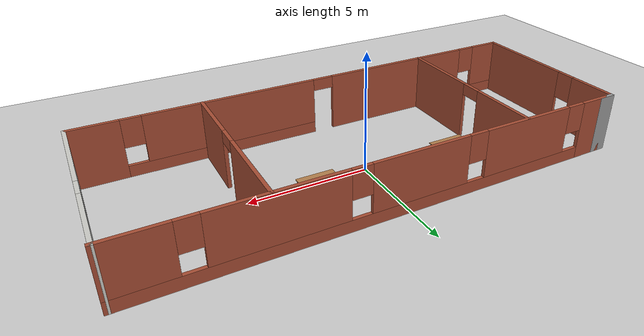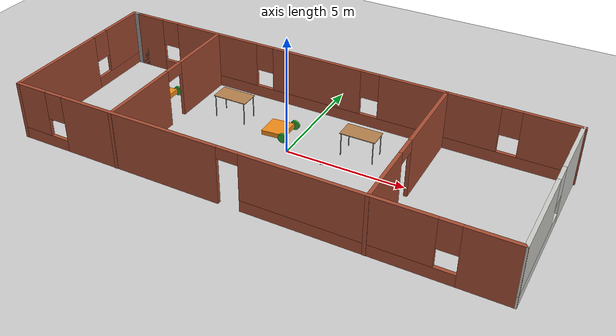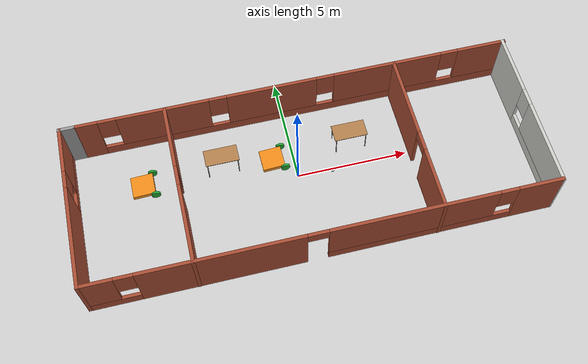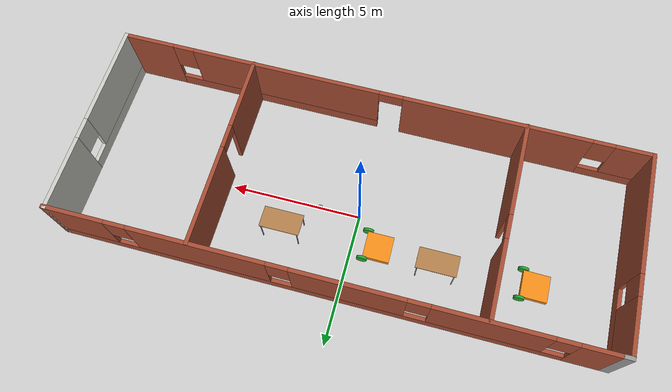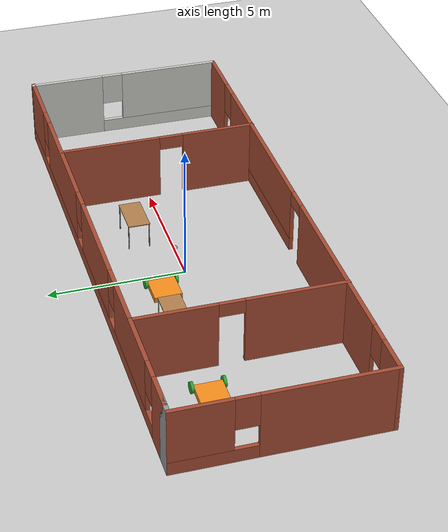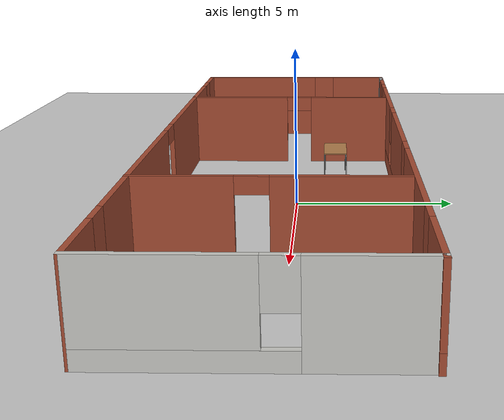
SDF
<sdf version="1.6">
 <world name="default">
  <plugin name="welcome" filename="libwelcome.so"/>
  <light name="sun" type="directional">
   <pose>0 0 10 0 -0 0</pose>
   <diffuse>0.8 0.8 0.8 1</diffuse>
   <specular>0.2 0.2 0.2 1</specular>
   <attenuation>
    <range>1000</range>
    <constant>0.9</constant>
    <linear>0.01</linear>
    <quadratic>0.001</quadratic>
   </attenuation>
   <direction>-0.5 0.1 -0.9</direction>
   <spot><inner_angle>0</inner_angle><outer_angle>0</outer_angle><falloff>0</falloff></spot>
  </light>
  <model name="ground_plane">
   <static>1</static>
   <link name="link">
    <collision name="collision">
     <geometry><plane><normal>0 0 1</normal><size>100 100</size></plane></geometry>
     <surface>
      <contact><collide_bitmask>65535</collide_bitmask></contact>
      <friction><ode><mu>100</mu><mu2>50</mu2></ode></friction>
     </surface>
    </collision>
    <visual name="visual">
     <cast_shadows>0</cast_shadows>
     <geometry><plane><normal>0 0 1</normal><size>100 100</size></plane></geometry>
     <material>
      <script><uri>file://media/materials/scripts/gazebo.material</uri><name>Gazebo/Grey</name></script>
     </material>
    </visual>
   </link>
  </model>
  <gravity>0 0 -9.8</gravity>
  <magnetic_field>6e-06 2.3e-05 -4.2e-05</magnetic_field>
  <atmosphere type="adiabatic"/>
  <physics name="default_physics" default="0" type="ode">
   <max_step_size>0.001</max_step_size>
   <real_time_factor>1</real_time_factor>
   <real_time_update_rate>1000</real_time_update_rate>
  </physics>
  <scene><ambient>0.4 0.4 0.4 1</ambient><background>0.7 0.7 0.7 1</background><shadows>1</shadows></scene>
  <spherical_coordinates>
   <surface_model>EARTH_WGS84</surface_model>
   <latitude_deg>0</latitude_deg>
   <longitude_deg>0</longitude_deg>
   <elevation>0</elevation>
   <heading_deg>0</heading_deg>
  </spherical_coordinates>
  <model name="Building">
   <pose>0.341244 0.00547 0 0 -0 0</pose>
   <link name="Wall_0">
    <pose>0.178503 3.27515 0 0 -0 0</pose>
    <visual name="Wall_0_Visual_0">
     <pose>-9.32436 0 1.25 0 -0 0</pose>
     <geometry><box><size>1.35128 0.15 2.5</size></box></geometry>
     <material>
      <script><uri>file://media/materials/scripts/gazebo.material</uri><name>Gazebo/Bricks</name></script>
      <ambient>0.996078 0.47451 0.0196078 1</ambient>
     </material>
     <meta><layer>0</layer></meta>
    </visual>
    <collision name="Wall_0_Collision_0">
     <geometry><box><size>1.35128 0.15 2.5</size></box></geometry>
     <pose>-9.32436 0 1.25 0 -0 0</pose>
    </collision>
    <visual name="Wall_0_Visual_1">
     <pose>0.675638 0 0.25 0 -0 0</pose>
     <geometry><box><size>18.6487 0.15 0.5</size></box></geometry>
     <material>
      <script><uri>file://media/materials/scripts/gazebo.material</uri><name>Gazebo/Bricks</name></script>
      <ambient>0.996078 0.47451 0.0196078 1</ambient>
     </material>
     <meta><layer>0</layer></meta>
    </visual>
    <collision name="Wall_0_Collision_1">
     <geometry><box><size>18.6487 0.15 0.5</size></box></geometry>
     <pose>0.675638 0 0.25 0 -0 0</pose>
    </collision>
    <visual name="Wall_0_Visual_2">
     <pose>-5.80867 0 1.5 0 -0 0</pose>
     <geometry><box><size>4.08011 0.15 2</size></box></geometry>
     <material>
      <script><uri>file://media/materials/scripts/gazebo.material</uri><name>Gazebo/Bricks</name></script>
      <ambient>0.996078 0.47451 0.0196078 1</ambient>
     </material>
     <meta><layer>0</layer></meta>
    </visual>
    <collision name="Wall_0_Collision_2">
     <geometry><box><size>4.08011 0.15 2</size></box></geometry>
     <pose>-5.80867 0 1.5 0 -0 0</pose>
    </collision>
    <visual name="Wall_0_Visual_3">
     <pose>-0.934705 0 1.5 0 -0 0</pose>
     <geometry><box><size>4.06781 0.15 2</size></box></geometry>
     <material>
      <script><uri>file://media/materials/scripts/gazebo.material</uri><name>Gazebo/Bricks</name></script>
      <ambient>0.996078 0.47451 0.0196078 1</ambient>
     </material>
     <meta><layer>0</layer></meta>
    </visual>
    <collision name="Wall_0_Collision_3">
     <geometry><box><size>4.06781 0.15 2</size></box></geometry>
     <pose>-0.934705 0 1.5 0 -0 0</pose>
    </collision>
    <visual name="Wall_0_Visual_4">
     <pose>4.3976 0 1.5 0 -0 0</pose>
     <geometry><box><size>4.9968 0.15 2</size></box></geometry>
     <material>
      <script><uri>file://media/materials/scripts/gazebo.material</uri><name>Gazebo/Bricks</name></script>
      <ambient>0.996078 0.47451 0.0196078 1</ambient>
     </material>
     <meta><layer>0</layer></meta>
    </visual>
    <collision name="Wall_0_Collision_4">
     <geometry><box><size>4.9968 0.15 2</size></box></geometry>
     <pose>4.3976 0 1.5 0 -0 0</pose>
    </collision>
    <visual name="Wall_0_Visual_5">
     <pose>8.848 0 1.5 0 -0 0</pose>
     <geometry><box><size>2.304 0.15 2</size></box></geometry>
     <material>
      <script><uri>file://media/materials/scripts/gazebo.material</uri><name>Gazebo/Bricks</name></script>
      <ambient>0.996078 0.47451 0.0196078 1</ambient>
     </material>
     <meta><layer>0</layer></meta>
    </visual>
    <collision name="Wall_0_Collision_5">
     <geometry><box><size>2.304 0.15 2</size></box></geometry>
     <pose>8.848 0 1.5 0 -0 0</pose>
    </collision>
    <visual name="Wall_0_Visual_6">
     <pose>-8.24872 0 1.9 0 -0 0</pose>
     <geometry><box><size>0.8 0.15 1.2</size></box></geometry>
     <material>
      <script><uri>file://media/materials/scripts/gazebo.material</uri><name>Gazebo/Bricks</name></script>
      <ambient>0.996078 0.47451 0.0196078 1</ambient>
     </material>
     <meta><layer>0</layer></meta>
    </visual>
    <collision name="Wall_0_Collision_6">
     <geometry><box><size>0.8 0.15 1.2</size></box></geometry>
     <pose>-8.24872 0 1.9 0 -0 0</pose>
    </collision>
    <visual name="Wall_0_Visual_7">
     <pose>-3.36861 0 1.9 0 -0 0</pose>
     <geometry><box><size>0.8 0.15 1.2</size></box></geometry>
     <material>
      <script><uri>file://media/materials/scripts/gazebo.material</uri><name>Gazebo/Bricks</name></script>
      <ambient>0.996078 0.47451 0.0196078 1</ambient>
     </material>
     <meta><layer>0</layer></meta>
    </visual>
    <collision name="Wall_0_Collision_7">
     <geometry><box><size>0.8 0.15 1.2</size></box></geometry>
     <pose>-3.36861 0 1.9 0 -0 0</pose>
    </collision>
    <visual name="Wall_0_Visual_8">
     <pose>1.4992 0 1.9 0 -0 0</pose>
     <geometry><box><size>0.8 0.15 1.2</size></box></geometry>
     <material>
      <script><uri>file://media/materials/scripts/gazebo.material</uri><name>Gazebo/Bricks</name></script>
      <ambient>0.996078 0.47451 0.0196078 1</ambient>
     </material>
     <meta><layer>0</layer></meta>
    </visual>
    <collision name="Wall_0_Collision_8">
     <geometry><box><size>0.8 0.15 1.2</size></box></geometry>
     <pose>1.4992 0 1.9 0 -0 0</pose>
    </collision>
    <visual name="Wall_0_Visual_9">
     <pose>7.296 0 1.9 0 -0 0</pose>
     <geometry><box><size>0.8 0.15 1.2</size></box></geometry>
     <material>
      <script><uri>file://media/materials/scripts/gazebo.material</uri><name>Gazebo/Bricks</name></script>
      <ambient>0.996078 0.47451 0.0196078 1</ambient>
     </material>
     <meta><layer>0</layer></meta>
    </visual>
    <collision name="Wall_0_Collision_9">
     <geometry><box><size>0.8 0.15 1.2</size></box></geometry>
     <pose>7.296 0 1.9 0 -0 0</pose>
    </collision>
   </link>
   <link name="Wall_1">
    <pose>10.0233 -0.399847 0 0 -0 -1.57807</pose>
    <visual name="Wall_1_Visual_0">
     <pose>-2.33623 0 1.25 0 -0 0</pose>
     <geometry><box><size>2.82774 0.15 2.5</size></box></geometry>
     <material>
      <script><uri>file://media/materials/scripts/gazebo.material</uri><name>Gazebo/CeilingTiled</name></script>
      <ambient>0.996078 0.47451 0.0196078 1</ambient>
     </material>
     <meta><layer>0</layer></meta>
    </visual>
    <collision name="Wall_1_Collision_0">
     <geometry><box><size>2.82774 0.15 2.5</size></box></geometry>
     <pose>-2.33623 0 1.25 0 -0 0</pose>
    </collision>
    <visual name="Wall_1_Visual_1">
     <pose>1.41387 0 0.25 0 -0 0</pose>
     <geometry><box><size>4.67246 0.15 0.5</size></box></geometry>
     <material>
      <script><uri>file://media/materials/scripts/gazebo.material</uri><name>Gazebo/CeilingTiled</name></script>
      <ambient>0.996078 0.47451 0.0196078 1</ambient>
     </material>
     <meta><layer>0</layer></meta>
    </visual>
    <collision name="Wall_1_Collision_1">
     <geometry><box><size>4.67246 0.15 0.5</size></box></geometry>
     <pose>1.41387 0 0.25 0 -0 0</pose>
    </collision>
    <visual name="Wall_1_Visual_2">
     <pose>1.81387 0 1.5 0 -0 0</pose>
     <geometry><box><size>3.87245 0.15 2</size></box></geometry>
     <material>
      <script><uri>file://media/materials/scripts/gazebo.material</uri><name>Gazebo/CeilingTiled</name></script>
      <ambient>0.996078 0.47451 0.0196078 1</ambient>
     </material>
     <meta><layer>0</layer></meta>
    </visual>
    <collision name="Wall_1_Collision_2">
     <geometry><box><size>3.87245 0.15 2</size></box></geometry>
     <pose>1.81387 0 1.5 0 -0 0</pose>
    </collision>
    <visual name="Wall_1_Visual_3">
     <pose>-0.522358 0 1.9 0 -0 0</pose>
     <geometry><box><size>0.8 0.15 1.2</size></box></geometry>
     <material>
      <script><uri>file://media/materials/scripts/gazebo.material</uri><name>Gazebo/CeilingTiled</name></script>
      <ambient>0.996078 0.47451 0.0196078 1</ambient>
     </material>
     <meta><layer>0</layer></meta>
    </visual>
    <collision name="Wall_1_Collision_3">
     <geometry><box><size>0.8 0.15 1.2</size></box></geometry>
     <pose>-0.522358 0 1.9 0 -0 0</pose>
    </collision>
   </link>
   <link name="Wall_2">
    <pose>-0.053502 -4.07485 0 0 -0 3.14159</pose>
    <visual name="Wall_2_Visual_0">
     <pose>-9.11902 0 1.25 0 -0 0</pose>
     <geometry><box><size>2.01195 0.15 2.5</size></box></geometry>
     <material>
      <script><uri>file://media/materials/scripts/gazebo.material</uri><name>Gazebo/Bricks</name></script>
      <ambient>0.996078 0.47451 0.0196078 1</ambient>
     </material>
     <meta><layer>0</layer></meta>
    </visual>
    <collision name="Wall_2_Collision_0">
     <geometry><box><size>2.01195 0.15 2.5</size></box></geometry>
     <pose>-9.11902 0 1.25 0 -0 0</pose>
    </collision>
    <visual name="Wall_2_Visual_1">
     <pose>4.36674 0 1.25 0 -0 0</pose>
     <geometry><box><size>7.00132 0.15 2.5</size></box></geometry>
     <material>
      <script><uri>file://media/materials/scripts/gazebo.material</uri><name>Gazebo/Bricks</name></script>
      <ambient>0.996078 0.47451 0.0196078 1</ambient>
     </material>
     <meta><layer>0</layer></meta>
    </visual>
    <collision name="Wall_2_Collision_1">
     <geometry><box><size>7.00132 0.15 2.5</size></box></geometry>
     <pose>4.36674 0 1.25 0 -0 0</pose>
    </collision>
    <visual name="Wall_2_Visual_2">
     <pose>-4.07348 0 0.25 0 -0 0</pose>
     <geometry><box><size>8.07913 0.15 0.5</size></box></geometry>
     <material>
      <script><uri>file://media/materials/scripts/gazebo.material</uri><name>Gazebo/Bricks</name></script>
      <ambient>0.996078 0.47451 0.0196078 1</ambient>
     </material>
     <meta><layer>0</layer></meta>
    </visual>
    <collision name="Wall_2_Collision_2">
     <geometry><box><size>8.07913 0.15 0.5</size></box></geometry>
     <pose>-4.07348 0 0.25 0 -0 0</pose>
    </collision>
    <visual name="Wall_2_Visual_3">
     <pose>8.9962 0 0.25 0 -0 0</pose>
     <geometry><box><size>2.2576 0.15 0.5</size></box></geometry>
     <material>
      <script><uri>file://media/materials/scripts/gazebo.material</uri><name>Gazebo/Bricks</name></script>
      <ambient>0.996078 0.47451 0.0196078 1</ambient>
     </material>
     <meta><layer>0</layer></meta>
    </visual>
    <collision name="Wall_2_Collision_3">
     <geometry><box><size>2.2576 0.15 0.5</size></box></geometry>
     <pose>8.9962 0 0.25 0 -0 0</pose>
    </collision>
    <visual name="Wall_2_Visual_4">
     <pose>-3.67348 0 1.5 0 -0 0</pose>
     <geometry><box><size>7.27913 0.15 2</size></box></geometry>
     <material>
      <script><uri>file://media/materials/scripts/gazebo.material</uri><name>Gazebo/Bricks</name></script>
      <ambient>0.996078 0.47451 0.0196078 1</ambient>
     </material>
     <meta><layer>0</layer></meta>
    </visual>
    <collision name="Wall_2_Collision_4">
     <geometry><box><size>7.27913 0.15 2</size></box></geometry>
     <pose>-3.67348 0 1.5 0 -0 0</pose>
    </collision>
    <visual name="Wall_2_Visual_5">
     <pose>-3.67348 0 1.5 0 -0 0</pose>
     <geometry><box><size>7.27913 0.15 2</size></box></geometry>
     <material>
      <script><uri>file://media/materials/scripts/gazebo.material</uri><name>Gazebo/Bricks</name></script>
      <ambient>0.996078 0.47451 0.0196078 1</ambient>
     </material>
     <meta><layer>0</layer></meta>
    </visual>
    <collision name="Wall_2_Collision_5">
     <geometry><box><size>7.27913 0.15 2</size></box></geometry>
     <pose>-3.67348 0 1.5 0 -0 0</pose>
    </collision>
    <visual name="Wall_2_Visual_6">
     <pose>9.3962 0 1.5 0 -0 0</pose>
     <geometry><box><size>1.4576 0.15 2</size></box></geometry>
     <material>
      <script><uri>file://media/materials/scripts/gazebo.material</uri><name>Gazebo/Bricks</name></script>
      <ambient>0.996078 0.47451 0.0196078 1</ambient>
     </material>
     <meta><layer>0</layer></meta>
    </visual>
    <collision name="Wall_2_Collision_6">
     <geometry><box><size>1.4576 0.15 2</size></box></geometry>
     <pose>9.3962 0 1.5 0 -0 0</pose>
    </collision>
    <visual name="Wall_2_Visual_7">
     <pose>-7.71305 0 1.9 0 -0 0</pose>
     <geometry><box><size>0.8 0.15 1.2</size></box></geometry>
     <material>
      <script><uri>file://media/materials/scripts/gazebo.material</uri><name>Gazebo/Bricks</name></script>
      <ambient>0.996078 0.47451 0.0196078 1</ambient>
     </material>
     <meta><layer>0</layer></meta>
    </visual>
    <collision name="Wall_2_Collision_7">
     <geometry><box><size>0.8 0.15 1.2</size></box></geometry>
     <pose>-7.71305 0 1.9 0 -0 0</pose>
    </collision>
    <visual name="Wall_2_Visual_8">
     <pose>8.2674 0 1.9 0 -0 0</pose>
     <geometry><box><size>0.8 0.15 1.2</size></box></geometry>
     <material>
      <script><uri>file://media/materials/scripts/gazebo.material</uri><name>Gazebo/Bricks</name></script>
      <ambient>0.996078 0.47451 0.0196078 1</ambient>
     </material>
     <meta><layer>0</layer></meta>
    </visual>
    <collision name="Wall_2_Collision_8">
     <geometry><box><size>0.8 0.15 1.2</size></box></geometry>
     <pose>8.2674 0 1.9 0 -0 0</pose>
    </collision>
    <visual name="Wall_2_Visual_9">
     <pose>0.416085 0 2.25 0 -0 0</pose>
     <geometry><box><size>0.9 0.15 0.5</size></box></geometry>
     <material>
      <script><uri>file://media/materials/scripts/gazebo.material</uri><name>Gazebo/Bricks</name></script>
      <ambient>0.996078 0.47451 0.0196078 1</ambient>
     </material>
     <meta><layer>0</layer></meta>
    </visual>
    <collision name="Wall_2_Collision_9">
     <geometry><box><size>0.9 0.15 0.5</size></box></geometry>
     <pose>0.416085 0 2.25 0 -0 0</pose>
    </collision>
    <visual name="Wall_2_Visual_10">
     <pose>0.416085 0 2.25 0 -0 0</pose>
     <geometry><box><size>0.9 0.15 0.5</size></box></geometry>
     <material>
      <script><uri>file://media/materials/scripts/gazebo.material</uri><name>Gazebo/Bricks</name></script>
      <ambient>0.996078 0.47451 0.0196078 1</ambient>
     </material>
     <meta><layer>0</layer></meta>
    </visual>
    <collision name="Wall_2_Collision_10">
     <geometry><box><size>0.9 0.15 0.5</size></box></geometry>
     <pose>0.416085 0 2.25 0 -0 0</pose>
    </collision>
   </link>
   <link name="Wall_3">
    <pose>-10.1035 -0.399847 0 0 -0 1.5708</pose>
    <visual name="Wall_3_Visual_0">
     <pose>-1.47172 0 1.25 0 -0 0</pose>
     <geometry><box><size>4.55657 0.15 2.5</size></box></geometry>
     <material>
      <script><uri>file://media/materials/scripts/gazebo.material</uri><name>Gazebo/Bricks</name></script>
      <ambient>0.996078 0.47451 0.0196078 1</ambient>
     </material>
     <meta><layer>0</layer></meta>
    </visual>
    <collision name="Wall_3_Collision_0">
     <geometry><box><size>4.55657 0.15 2.5</size></box></geometry>
     <pose>-1.47172 0 1.25 0 -0 0</pose>
    </collision>
    <visual name="Wall_3_Visual_1">
     <pose>2.27828 0 0.25 0 -0 0</pose>
     <geometry><box><size>2.94343 0.15 0.5</size></box></geometry>
     <material>
      <script><uri>file://media/materials/scripts/gazebo.material</uri><name>Gazebo/Bricks</name></script>
      <ambient>0.996078 0.47451 0.0196078 1</ambient>
     </material>
     <meta><layer>0</layer></meta>
    </visual>
    <collision name="Wall_3_Collision_1">
     <geometry><box><size>2.94343 0.15 0.5</size></box></geometry>
     <pose>2.27828 0 0.25 0 -0 0</pose>
    </collision>
    <visual name="Wall_3_Visual_2">
     <pose>2.67828 0 1.5 0 -0 0</pose>
     <geometry><box><size>2.14343 0.15 2</size></box></geometry>
     <material>
      <script><uri>file://media/materials/scripts/gazebo.material</uri><name>Gazebo/Bricks</name></script>
      <ambient>0.996078 0.47451 0.0196078 1</ambient>
     </material>
     <meta><layer>0</layer></meta>
    </visual>
    <collision name="Wall_3_Collision_2">
     <geometry><box><size>2.14343 0.15 2</size></box></geometry>
     <pose>2.67828 0 1.5 0 -0 0</pose>
    </collision>
    <visual name="Wall_3_Visual_3">
     <pose>1.20657 0 1.9 0 -0 0</pose>
     <geometry><box><size>0.8 0.15 1.2</size></box></geometry>
     <material>
      <script><uri>file://media/materials/scripts/gazebo.material</uri><name>Gazebo/Bricks</name></script>
      <ambient>0.996078 0.47451 0.0196078 1</ambient>
     </material>
     <meta><layer>0</layer></meta>
    </visual>
    <collision name="Wall_3_Collision_3">
     <geometry><box><size>0.8 0.15 1.2</size></box></geometry>
     <pose>1.20657 0 1.9 0 -0 0</pose>
    </collision>
   </link>
   <link name="Wall_4">
    <collision name="Wall_4_Collision">
     <geometry><box><size>0.75 0.15 2.5</size></box></geometry>
     <pose>0 0 1.25 0 -0 0</pose>
    </collision>
    <visual name="Wall_4_Visual">
     <pose>0 0 1.25 0 -0 0</pose>
     <geometry><box><size>0.75 0.15 2.5</size></box></geometry>
     <material>
      <script><uri>file://media/materials/scripts/gazebo.material</uri><name>Gazebo/Grey</name></script>
      <ambient>1 1 1 1</ambient>
     </material>
     <meta><layer>0</layer></meta>
    </visual>
    <pose>-9.8035 3.27515 0 0 -0 0</pose>
   </link>
   <link name="Wall_6">
    <pose>-5.55276 -0.41454 0 0 -0 -1.5708</pose>
    <visual name="Wall_6_Visual_0">
     <pose>-2.25499 0 1.25 0 -0 0</pose>
     <geometry><box><size>2.99002 0.15 2.5</size></box></geometry>
     <material>
      <script><uri>file://media/materials/scripts/gazebo.material</uri><name>Gazebo/Bricks</name></script>
      <ambient>0.996078 0.47451 0.0196078 1</ambient>
     </material>
     <meta><layer>0</layer></meta>
    </visual>
    <collision name="Wall_6_Collision_0">
     <geometry><box><size>2.99002 0.15 2.5</size></box></geometry>
     <pose>-2.25499 0 1.25 0 -0 0</pose>
    </collision>
    <visual name="Wall_6_Visual_1">
     <pose>1.94501 0 1.25 0 -0 0</pose>
     <geometry><box><size>3.60998 0.15 2.5</size></box></geometry>
     <material>
      <script><uri>file://media/materials/scripts/gazebo.material</uri><name>Gazebo/Bricks</name></script>
      <ambient>0.996078 0.47451 0.0196078 1</ambient>
     </material>
     <meta><layer>0</layer></meta>
    </visual>
    <collision name="Wall_6_Collision_1">
     <geometry><box><size>3.60998 0.15 2.5</size></box></geometry>
     <pose>1.94501 0 1.25 0 -0 0</pose>
    </collision>
    <visual name="Wall_6_Visual_2">
     <pose>-0.309981 0 2.25 0 -0 0</pose>
     <geometry><box><size>0.9 0.15 0.5</size></box></geometry>
     <material>
      <script><uri>file://media/materials/scripts/gazebo.material</uri><name>Gazebo/Bricks</name></script>
      <ambient>0.996078 0.47451 0.0196078 1</ambient>
     </material>
     <meta><layer>0</layer></meta>
    </visual>
    <collision name="Wall_6_Collision_2">
     <geometry><box><size>0.9 0.15 0.5</size></box></geometry>
     <pose>-0.309981 0 2.25 0 -0 0</pose>
    </collision>
   </link>
   <link name="Wall_8">
    <pose>4.86555 -0.412813 0 0 -0 -1.5708</pose>
    <visual name="Wall_8_Visual_0">
     <pose>-1.84818 0 1.25 0 -0 0</pose>
     <geometry><box><size>3.80364 0.15 2.5</size></box></geometry>
     <material>
      <script><uri>file://media/materials/scripts/gazebo.material</uri><name>Gazebo/Bricks</name></script>
      <ambient>0.996078 0.47451 0.0196078 1</ambient>
     </material>
     <meta><layer>0</layer></meta>
    </visual>
    <collision name="Wall_8_Collision_0">
     <geometry><box><size>3.80364 0.15 2.5</size></box></geometry>
     <pose>-1.84818 0 1.25 0 -0 0</pose>
    </collision>
    <visual name="Wall_8_Visual_1">
     <pose>2.35182 0 1.25 0 -0 0</pose>
     <geometry><box><size>2.79636 0.15 2.5</size></box></geometry>
     <material>
      <script><uri>file://media/materials/scripts/gazebo.material</uri><name>Gazebo/Bricks</name></script>
      <ambient>0.996078 0.47451 0.0196078 1</ambient>
     </material>
     <meta><layer>0</layer></meta>
    </visual>
    <collision name="Wall_8_Collision_1">
     <geometry><box><size>2.79636 0.15 2.5</size></box></geometry>
     <pose>2.35182 0 1.25 0 -0 0</pose>
    </collision>
    <visual name="Wall_8_Visual_2">
     <pose>0.503641 0 2.25 0 -0 0</pose>
     <geometry><box><size>0.9 0.15 0.5</size></box></geometry>
     <material>
      <script><uri>file://media/materials/scripts/gazebo.material</uri><name>Gazebo/Bricks</name></script>
      <ambient>0.996078 0.47451 0.0196078 1</ambient>
     </material>
     <meta><layer>0</layer></meta>
    </visual>
    <collision name="Wall_8_Collision_2">
     <geometry><box><size>0.9 0.15 0.5</size></box></geometry>
     <pose>0.503641 0 2.25 0 -0 0</pose>
    </collision>
   </link>
   <static>1</static>
  </model>
  <model name="HumanoidRobot">
   <link name="link_3">
    <inertial>
     <mass>1</mass>
     <inertia>
      <ixx>0.166667</ixx>
      <ixy>0</ixy>
      <ixz>0</ixz>
      <iyy>0.166667</iyy>
      <iyz>0</iyz>
      <izz>0.166667</izz>
     </inertia>
     <pose>0 0 0.2 0 -0 0</pose>
    </inertial>
    <pose>-0 -0 0.333333 0 -0 0</pose>
    <visual name="visual">
     <geometry><box><size>0.2 1 1</size></box></geometry>
     <material>
      <lighting>1</lighting>
      <script><uri>file://media/materials/scripts/gazebo.material</uri><name>Gazebo/Orange</name></script>
      <shader type="pixel"><normal_map>__default__</normal_map></shader>
      <ambient>0.3 0.3 0.3 1</ambient>
      <diffuse>0.7 0.7 0.7 1</diffuse>
      <specular>0.01 0.01 0.01 1</specular>
      <emissive>0 0 0 1</emissive>
     </material>
    </visual>
    <collision name="collision">
     <geometry><box><size>0.3 1 1</size></box></geometry>
     <surface>
      <friction>
       <ode><mu>1</mu><mu2>1</mu2><fdir1>0 0 0</fdir1><slip1>0</slip1><slip2>0</slip2></ode>
       <torsional>
        <coefficient>1</coefficient>
        <patch_radius>0</patch_radius>
        <surface_radius>0</surface_radius>
        <use_patch_radius>1</use_patch_radius>
        <ode><slip>0</slip></ode>
       </torsional>
      </friction>
      <bounce><restitution_coefficient>0</restitution_coefficient><threshold>1e+06</threshold></bounce>
      <contact>
       <collide_without_contact>0</collide_without_contact>
       <collide_without_contact_bitmask>1</collide_without_contact_bitmask>
       <collide_bitmask>1</collide_bitmask>
       <ode>
        <soft_cfm>0</soft_cfm>
        <soft_erp>0.2</soft_erp>
        <kp>1e+13</kp>
        <kd>1</kd>
        <max_vel>0.01</max_vel>
        <min_depth>0</min_depth>
       </ode>
       <bullet>
        <split_impulse>1</split_impulse>
        <split_impulse_penetration_threshold>-0.01</split_impulse_penetration_threshold>
        <soft_cfm>0</soft_cfm>
        <soft_erp>0.2</soft_erp>
        <kp>1e+13</kp>
        <kd>1</kd>
       </bullet>
      </contact>
     </surface>
    </collision>
   </link>
   <link name="link_4_clone">
    <inertial>
     <mass>1</mass>
     <inertia><ixx>0.145833</ixx><ixy>0</ixy><ixz>0</ixz><iyy>0.145833</iyy><iyz>0</iyz><izz>0.125</izz></inertia>
    </inertial>
    <pose>-0 0.55098 -0.166667 1.5757 -0 0</pose>
    <visual name="visual">
     <geometry><cylinder><radius>0.2</radius><length>0.1</length></cylinder></geometry>
     <material>
      <lighting>1</lighting>
      <script><uri>file://media/materials/scripts/gazebo.material</uri><name>Gazebo/Green</name></script>
      <shader type="pixel"><normal_map>__default__</normal_map></shader>
      <ambient>0.3 0.3 0.3 1</ambient>
      <diffuse>0.7 0.7 0.7 1</diffuse>
      <specular>0.01 0.01 0.01 1</specular>
      <emissive>0 0 0 1</emissive>
     </material>
    </visual>
    <collision name="collision">
     <geometry><cylinder><radius>0.2</radius><length>0.1</length></cylinder></geometry>
     <surface>
      <friction>
       <ode><mu>1</mu><mu2>1</mu2><fdir1>0 0 0</fdir1><slip1>0</slip1><slip2>0</slip2></ode>
       <torsional>
        <coefficient>1</coefficient>
        <patch_radius>0</patch_radius>
        <surface_radius>0</surface_radius>
        <use_patch_radius>1</use_patch_radius>
        <ode><slip>0</slip></ode>
       </torsional>
      </friction>
      <bounce><restitution_coefficient>0</restitution_coefficient><threshold>1e+06</threshold></bounce>
      <contact>
       <collide_without_contact>0</collide_without_contact>
       <collide_without_contact_bitmask>1</collide_without_contact_bitmask>
       <collide_bitmask>1</collide_bitmask>
       <ode>
        <soft_cfm>0</soft_cfm>
        <soft_erp>0.2</soft_erp>
        <kp>1e+13</kp>
        <kd>1</kd>
        <max_vel>0.01</max_vel>
        <min_depth>0</min_depth>
       </ode>
       <bullet>
        <split_impulse>1</split_impulse>
        <split_impulse_penetration_threshold>-0.01</split_impulse_penetration_threshold>
        <soft_cfm>0</soft_cfm>
        <soft_erp>0.2</soft_erp>
        <kp>1e+13</kp>
        <kd>1</kd>
       </bullet>
      </contact>
     </surface>
    </collision>
   </link>
   <link name="link_4_clone_clone">
    <inertial>
     <mass>1</mass>
     <inertia><ixx>0.145833</ixx><ixy>0</ixy><ixz>0</ixz><iyy>0.145833</iyy><iyz>0</iyz><izz>0.125</izz></inertia>
    </inertial>
    <pose>-0 -0.55098 -0.166667 1.5757 -0 0</pose>
    <visual name="visual">
     <geometry><cylinder><radius>0.2</radius><length>0.1</length></cylinder></geometry>
     <material>
      <lighting>1</lighting>
      <script><uri>file://media/materials/scripts/gazebo.material</uri><name>Gazebo/Green</name></script>
      <shader type="pixel"><normal_map>__default__</normal_map></shader>
      <ambient>0.3 0.3 0.3 1</ambient>
      <diffuse>0.7 0.7 0.7 1</diffuse>
      <specular>0.01 0.01 0.01 1</specular>
      <emissive>0 0 0 1</emissive>
     </material>
    </visual>
    <collision name="collision">
     <geometry><cylinder><radius>0.2</radius><length>0.1</length></cylinder></geometry>
     <surface>
      <friction>
       <ode><mu>1</mu><mu2>1</mu2><fdir1>0 0 0</fdir1><slip1>0</slip1><slip2>0</slip2></ode>
       <torsional>
        <coefficient>1</coefficient>
        <patch_radius>0</patch_radius>
        <surface_radius>0</surface_radius>
        <use_patch_radius>1</use_patch_radius>
        <ode><slip>0</slip></ode>
       </torsional>
      </friction>
      <bounce><restitution_coefficient>0</restitution_coefficient><threshold>1e+06</threshold></bounce>
      <contact>
       <collide_without_contact>0</collide_without_contact>
       <collide_without_contact_bitmask>1</collide_without_contact_bitmask>
       <collide_bitmask>1</collide_bitmask>
       <ode>
        <soft_cfm>0</soft_cfm>
        <soft_erp>0.2</soft_erp>
        <kp>1e+13</kp>
        <kd>1</kd>
        <max_vel>0.01</max_vel>
        <min_depth>0</min_depth>
       </ode>
       <bullet>
        <split_impulse>1</split_impulse>
        <split_impulse_penetration_threshold>-0.01</split_impulse_penetration_threshold>
        <soft_cfm>0</soft_cfm>
        <soft_erp>0.2</soft_erp>
        <kp>1e+13</kp>
        <kd>1</kd>
       </bullet>
      </contact>
     </surface>
    </collision>
   </link>
   <joint name="link_3_JOINT_4" type="revolute">
    <parent>link_3</parent>
    <child>link_4_clone_clone</child>
    <axis>
     <xyz>0 0 1</xyz>
     <limit>
      <lower>-1.79769e+308</lower>
      <upper>1.79769e+308</upper>
      <effort>-1</effort>
      <velocity>-1</velocity>
     </limit>
     <dynamics>
      <spring_reference>0</spring_reference>
      <spring_stiffness>0</spring_stiffness>
      <damping>0</damping>
     </dynamics>
     <use_parent_model_frame>0</use_parent_model_frame>
    </axis>
    <physics>
     <ode><limit><cfm>0</cfm><erp>0.2</erp></limit><suspension><cfm>0</cfm><erp>0.2</erp></suspension></ode>
    </physics>
   </joint>
   <joint name="link_3_JOINT_5" type="revolute">
    <parent>link_3</parent>
    <child>link_4_clone</child>
    <axis>
     <xyz>0 0 1</xyz>
     <limit>
      <lower>-1.79769e+308</lower>
      <upper>1.79769e+308</upper>
      <effort>-1</effort>
      <velocity>-1</velocity>
     </limit>
     <dynamics>
      <spring_reference>0</spring_reference>
      <spring_stiffness>0</spring_stiffness>
      <damping>0</damping>
     </dynamics>
     <use_parent_model_frame>0</use_parent_model_frame>
    </axis>
    <physics>
     <ode><limit><cfm>0</cfm><erp>0.2</erp></limit><suspension><cfm>0</cfm><erp>0.2</erp></suspension></ode>
    </physics>
   </joint>
   <static>0</static>
   <pose>-0.654546 1.03184 0.191642 -3.1415 -1.52056 -3.12766</pose>
  </model>
  <model name="HumanoidRobot_0">
   <link name="link_3">
    <inertial>
     <mass>1</mass>
     <inertia>
      <ixx>0.166667</ixx>
      <ixy>0</ixy>
      <ixz>0</ixz>
      <iyy>0.166667</iyy>
      <iyz>0</iyz>
      <izz>0.166667</izz>
     </inertia>
     <pose>0 0 0.2 0 -0 0</pose>
    </inertial>
    <pose>-0 -0 0.333333 0 -0 0</pose>
    <visual name="visual">
     <geometry><box><size>0.2 1 1</size></box></geometry>
     <material>
      <lighting>1</lighting>
      <script><uri>file://media/materials/scripts/gazebo.material</uri><name>Gazebo/Orange</name></script>
      <shader type="pixel"><normal_map>__default__</normal_map></shader>
      <ambient>0.3 0.3 0.3 1</ambient>
      <diffuse>0.7 0.7 0.7 1</diffuse>
      <specular>0.01 0.01 0.01 1</specular>
      <emissive>0 0 0 1</emissive>
     </material>
    </visual>
    <collision name="collision">
     <geometry><box><size>0.3 1 1</size></box></geometry>
     <surface>
      <friction>
       <ode><mu>1</mu><mu2>1</mu2><fdir1>0 0 0</fdir1><slip1>0</slip1><slip2>0</slip2></ode>
       <torsional>
        <coefficient>1</coefficient>
        <patch_radius>0</patch_radius>
        <surface_radius>0</surface_radius>
        <use_patch_radius>1</use_patch_radius>
        <ode><slip>0</slip></ode>
       </torsional>
      </friction>
      <bounce><restitution_coefficient>0</restitution_coefficient><threshold>1e+06</threshold></bounce>
      <contact>
       <collide_without_contact>0</collide_without_contact>
       <collide_without_contact_bitmask>1</collide_without_contact_bitmask>
       <collide_bitmask>1</collide_bitmask>
       <ode>
        <soft_cfm>0</soft_cfm>
        <soft_erp>0.2</soft_erp>
        <kp>1e+13</kp>
        <kd>1</kd>
        <max_vel>0.01</max_vel>
        <min_depth>0</min_depth>
       </ode>
       <bullet>
        <split_impulse>1</split_impulse>
        <split_impulse_penetration_threshold>-0.01</split_impulse_penetration_threshold>
        <soft_cfm>0</soft_cfm>
        <soft_erp>0.2</soft_erp>
        <kp>1e+13</kp>
        <kd>1</kd>
       </bullet>
      </contact>
     </surface>
    </collision>
   </link>
   <link name="link_4_clone">
    <inertial>
     <mass>1</mass>
     <inertia><ixx>0.145833</ixx><ixy>0</ixy><ixz>0</ixz><iyy>0.145833</iyy><iyz>0</iyz><izz>0.125</izz></inertia>
    </inertial>
    <pose>-0 0.55098 -0.166667 1.5757 -0 0</pose>
    <visual name="visual">
     <geometry><cylinder><radius>0.2</radius><length>0.1</length></cylinder></geometry>
     <material>
      <lighting>1</lighting>
      <script><uri>file://media/materials/scripts/gazebo.material</uri><name>Gazebo/Green</name></script>
      <shader type="pixel"><normal_map>__default__</normal_map></shader>
      <ambient>0.3 0.3 0.3 1</ambient>
      <diffuse>0.7 0.7 0.7 1</diffuse>
      <specular>0.01 0.01 0.01 1</specular>
      <emissive>0 0 0 1</emissive>
     </material>
    </visual>
    <collision name="collision">
     <geometry><cylinder><radius>0.2</radius><length>0.1</length></cylinder></geometry>
     <surface>
      <friction>
       <ode><mu>1</mu><mu2>1</mu2><fdir1>0 0 0</fdir1><slip1>0</slip1><slip2>0</slip2></ode>
       <torsional>
        <coefficient>1</coefficient>
        <patch_radius>0</patch_radius>
        <surface_radius>0</surface_radius>
        <use_patch_radius>1</use_patch_radius>
        <ode><slip>0</slip></ode>
       </torsional>
      </friction>
      <bounce><restitution_coefficient>0</restitution_coefficient><threshold>1e+06</threshold></bounce>
      <contact>
       <collide_without_contact>0</collide_without_contact>
       <collide_without_contact_bitmask>1</collide_without_contact_bitmask>
       <collide_bitmask>1</collide_bitmask>
       <ode>
        <soft_cfm>0</soft_cfm>
        <soft_erp>0.2</soft_erp>
        <kp>1e+13</kp>
        <kd>1</kd>
        <max_vel>0.01</max_vel>
        <min_depth>0</min_depth>
       </ode>
       <bullet>
        <split_impulse>1</split_impulse>
        <split_impulse_penetration_threshold>-0.01</split_impulse_penetration_threshold>
        <soft_cfm>0</soft_cfm>
        <soft_erp>0.2</soft_erp>
        <kp>1e+13</kp>
        <kd>1</kd>
       </bullet>
      </contact>
     </surface>
    </collision>
   </link>
   <link name="link_4_clone_clone">
    <inertial>
     <mass>1</mass>
     <inertia><ixx>0.145833</ixx><ixy>0</ixy><ixz>0</ixz><iyy>0.145833</iyy><iyz>0</iyz><izz>0.125</izz></inertia>
    </inertial>
    <pose>-0 -0.55098 -0.166667 1.5757 -0 0</pose>
    <visual name="visual">
     <geometry><cylinder><radius>0.2</radius><length>0.1</length></cylinder></geometry>
     <material>
      <lighting>1</lighting>
      <script><uri>file://media/materials/scripts/gazebo.material</uri><name>Gazebo/Green</name></script>
      <shader type="pixel"><normal_map>__default__</normal_map></shader>
      <ambient>0.3 0.3 0.3 1</ambient>
      <diffuse>0.7 0.7 0.7 1</diffuse>
      <specular>0.01 0.01 0.01 1</specular>
      <emissive>0 0 0 1</emissive>
     </material>
    </visual>
    <collision name="collision">
     <geometry><cylinder><radius>0.2</radius><length>0.1</length></cylinder></geometry>
     <surface>
      <friction>
       <ode><mu>1</mu><mu2>1</mu2><fdir1>0 0 0</fdir1><slip1>0</slip1><slip2>0</slip2></ode>
       <torsional>
        <coefficient>1</coefficient>
        <patch_radius>0</patch_radius>
        <surface_radius>0</surface_radius>
        <use_patch_radius>1</use_patch_radius>
        <ode><slip>0</slip></ode>
       </torsional>
      </friction>
      <bounce><restitution_coefficient>0</restitution_coefficient><threshold>1e+06</threshold></bounce>
      <contact>
       <collide_without_contact>0</collide_without_contact>
       <collide_without_contact_bitmask>1</collide_without_contact_bitmask>
       <collide_bitmask>1</collide_bitmask>
       <ode>
        <soft_cfm>0</soft_cfm>
        <soft_erp>0.2</soft_erp>
        <kp>1e+13</kp>
        <kd>1</kd>
        <max_vel>0.01</max_vel>
        <min_depth>0</min_depth>
       </ode>
       <bullet>
        <split_impulse>1</split_impulse>
        <split_impulse_penetration_threshold>-0.01</split_impulse_penetration_threshold>
        <soft_cfm>0</soft_cfm>
        <soft_erp>0.2</soft_erp>
        <kp>1e+13</kp>
        <kd>1</kd>
       </bullet>
      </contact>
     </surface>
    </collision>
   </link>
   <joint name="link_3_JOINT_4" type="revolute">
    <parent>link_3</parent>
    <child>link_4_clone_clone</child>
    <axis>
     <xyz>0 0 1</xyz>
     <limit>
      <lower>-1.79769e+308</lower>
      <upper>1.79769e+308</upper>
      <effort>-1</effort>
      <velocity>-1</velocity>
     </limit>
     <dynamics>
      <spring_reference>0</spring_reference>
      <spring_stiffness>0</spring_stiffness>
      <damping>0</damping>
     </dynamics>
     <use_parent_model_frame>0</use_parent_model_frame>
    </axis>
    <physics>
     <ode><limit><cfm>0</cfm><erp>0.2</erp></limit><suspension><cfm>0</cfm><erp>0.2</erp></suspension></ode>
    </physics>
   </joint>
   <joint name="link_3_JOINT_5" type="revolute">
    <parent>link_3</parent>
    <child>link_4_clone</child>
    <axis>
     <xyz>0 0 1</xyz>
     <limit>
      <lower>-1.79769e+308</lower>
      <upper>1.79769e+308</upper>
      <effort>-1</effort>
      <velocity>-1</velocity>
     </limit>
     <dynamics>
      <spring_reference>0</spring_reference>
      <spring_stiffness>0</spring_stiffness>
      <damping>0</damping>
     </dynamics>
     <use_parent_model_frame>0</use_parent_model_frame>
    </axis>
    <physics>
     <ode><limit><cfm>0</cfm><erp>0.2</erp></limit><suspension><cfm>0</cfm><erp>0.2</erp></suspension></ode>
    </physics>
   </joint>
   <static>0</static>
   <pose>-6.50297 1.03057 0.191638 -3.14148 -1.52057 -3.13712</pose>
  </model>
  <model name="table">
   <static>1</static>
   <link name="link">
    <collision name="surface">
     <pose>0 0 1 0 -0 0</pose>
     <geometry><box><size>1.5 0.8 0.03</size></box></geometry>
     <surface><friction><ode><mu>0.6</mu><mu2>0.6</mu2></ode></friction></surface>
    </collision>
    <visual name="visual1">
     <pose>0 0 1 0 -0 0</pose>
     <geometry><box><size>1.5 0.8 0.03</size></box></geometry>
     <material>
      <script><uri>file://media/materials/scripts/gazebo.material</uri><name>Gazebo/Wood</name></script>
     </material>
    </visual>
    <collision name="front_left_leg">
     <pose>0.68 0.38 0.5 0 -0 0</pose>
     <geometry><cylinder><radius>0.02</radius><length>1</length></cylinder></geometry>
    </collision>
    <visual name="front_left_leg">
     <pose>0.68 0.38 0.5 0 -0 0</pose>
     <geometry><cylinder><radius>0.02</radius><length>1</length></cylinder></geometry>
     <material>
      <script><uri>file://media/materials/scripts/gazebo.material</uri><name>Gazebo/Grey</name></script>
     </material>
    </visual>
    <collision name="front_right_leg">
     <pose>0.68 -0.38 0.5 0 -0 0</pose>
     <geometry><cylinder><radius>0.02</radius><length>1</length></cylinder></geometry>
    </collision>
    <visual name="front_right_leg">
     <pose>0.68 -0.38 0.5 0 -0 0</pose>
     <geometry><cylinder><radius>0.02</radius><length>1</length></cylinder></geometry>
     <material>
      <script><uri>file://media/materials/scripts/gazebo.material</uri><name>Gazebo/Grey</name></script>
     </material>
    </visual>
    <collision name="back_right_leg">
     <pose>-0.68 -0.38 0.5 0 -0 0</pose>
     <geometry><cylinder><radius>0.02</radius><length>1</length></cylinder></geometry>
    </collision>
    <visual name="back_right_leg">
     <pose>-0.68 -0.38 0.5 0 -0 0</pose>
     <geometry><cylinder><radius>0.02</radius><length>1</length></cylinder></geometry>
     <material>
      <script><uri>file://media/materials/scripts/gazebo.material</uri><name>Gazebo/Grey</name></script>
     </material>
    </visual>
    <collision name="back_left_leg">
     <pose>-0.68 0.38 0.5 0 -0 0</pose>
     <geometry><cylinder><radius>0.02</radius><length>1</length></cylinder></geometry>
    </collision>
    <visual name="back_left_leg">
     <pose>-0.68 0.38 0.5 0 -0 0</pose>
     <geometry><cylinder><radius>0.02</radius><length>1</length></cylinder></geometry>
     <material>
      <script><uri>file://media/materials/scripts/gazebo.material</uri><name>Gazebo/Grey</name></script>
     </material>
    </visual>
   </link>
   <pose>2.63222 1.19028 0 0 -0 0</pose>
  </model>
  <model name="table_0">
   <static>1</static>
   <link name="link">
    <collision name="surface">
     <pose>0 0 1 0 -0 0</pose>
     <geometry><box><size>1.5 0.8 0.03</size></box></geometry>
     <surface><friction><ode><mu>0.6</mu><mu2>0.6</mu2></ode></friction></surface>
    </collision>
    <visual name="visual1">
     <pose>0 0 1 0 -0 0</pose>
     <geometry><box><size>1.5 0.8 0.03</size></box></geometry>
     <material>
      <script><uri>file://media/materials/scripts/gazebo.material</uri><name>Gazebo/Wood</name></script>
     </material>
    </visual>
    <collision name="front_left_leg">
     <pose>0.68 0.38 0.5 0 -0 0</pose>
     <geometry><cylinder><radius>0.02</radius><length>1</length></cylinder></geometry>
    </collision>
    <visual name="front_left_leg">
     <pose>0.68 0.38 0.5 0 -0 0</pose>
     <geometry><cylinder><radius>0.02</radius><length>1</length></cylinder></geometry>
     <material>
      <script><uri>file://media/materials/scripts/gazebo.material</uri><name>Gazebo/Grey</name></script>
     </material>
    </visual>
    <collision name="front_right_leg">
     <pose>0.68 -0.38 0.5 0 -0 0</pose>
     <geometry><cylinder><radius>0.02</radius><length>1</length></cylinder></geometry>
    </collision>
    <visual name="front_right_leg">
     <pose>0.68 -0.38 0.5 0 -0 0</pose>
     <geometry><cylinder><radius>0.02</radius><length>1</length></cylinder></geometry>
     <material>
      <script><uri>file://media/materials/scripts/gazebo.material</uri><name>Gazebo/Grey</name></script>
     </material>
    </visual>
    <collision name="back_right_leg">
     <pose>-0.68 -0.38 0.5 0 -0 0</pose>
     <geometry><cylinder><radius>0.02</radius><length>1</length></cylinder></geometry>
    </collision>
    <visual name="back_right_leg">
     <pose>-0.68 -0.38 0.5 0 -0 0</pose>
     <geometry><cylinder><radius>0.02</radius><length>1</length></cylinder></geometry>
     <material>
      <script><uri>file://media/materials/scripts/gazebo.material</uri><name>Gazebo/Grey</name></script>
     </material>
    </visual>
    <collision name="back_left_leg">
     <pose>-0.68 0.38 0.5 0 -0 0</pose>
     <geometry><cylinder><radius>0.02</radius><length>1</length></cylinder></geometry>
    </collision>
    <visual name="back_left_leg">
     <pose>-0.68 0.38 0.5 0 -0 0</pose>
     <geometry><cylinder><radius>0.02</radius><length>1</length></cylinder></geometry>
     <material>
      <script><uri>file://media/materials/scripts/gazebo.material</uri><name>Gazebo/Grey</name></script>
     </material>
    </visual>
   </link>
   <pose>-3.2057 1.26777 0 0 -0 0</pose>
  </model>
  <model name="my_ball_0">
   <link name="link_0">
    <inertial>
     <mass>1</mass>
     <inertia><ixx>0.1</ixx><ixy>0</ixy><ixz>0</ixz><iyy>0.1</iyy><iyz>0</iyz><izz>0.1</izz></inertia>
    </inertial>
    <visual name="visual">
     <geometry><sphere><radius>0.1</radius></sphere></geometry>
     <material>
      <lighting>1</lighting>
      <script><uri>file://media/materials/scripts/gazebo.material</uri><name>Gazebo/Grey</name></script>
      <shader type="pixel"><normal_map>__default__</normal_map></shader>
      <ambient>1 1 1 1</ambient>
      <diffuse>1 1 1 1</diffuse>
      <specular>1 1 1 1</specular>
      <emissive>1 1 1 1</emissive>
     </material>
    </visual>
    <collision name="collision">
     <geometry><sphere><radius>0.1</radius></sphere></geometry>
     <surface>
      <friction>
       <ode><mu>1</mu><mu2>1</mu2><fdir1>0 0 0</fdir1><slip1>0</slip1><slip2>0</slip2></ode>
       <torsional>
        <coefficient>1</coefficient>
        <patch_radius>0</patch_radius>
        <surface_radius>0</surface_radius>
        <use_patch_radius>1</use_patch_radius>
        <ode><slip>0</slip></ode>
       </torsional>
      </friction>
      <bounce><restitution_coefficient>0</restitution_coefficient><threshold>1e+06</threshold></bounce>
      <contact>
       <collide_without_contact>0</collide_without_contact>
       <collide_without_contact_bitmask>1</collide_without_contact_bitmask>
       <collide_bitmask>1</collide_bitmask>
       <ode>
        <soft_cfm>0</soft_cfm>
        <soft_erp>0.2</soft_erp>
        <kp>1e+13</kp>
        <kd>1</kd>
        <max_vel>0.01</max_vel>
        <min_depth>0</min_depth>
       </ode>
       <bullet>
        <split_impulse>1</split_impulse>
        <split_impulse_penetration_threshold>-0.01</split_impulse_penetration_threshold>
        <soft_cfm>0</soft_cfm>
        <soft_erp>0.2</soft_erp>
        <kp>1e+13</kp>
        <kd>1</kd>
       </bullet>
      </contact>
     </surface>
    </collision>
   </link>
   <static>0</static>
   <pose>1.56571 -0.042512 0 0 -0 0</pose>
  </model>
 </world>
</sdf>
